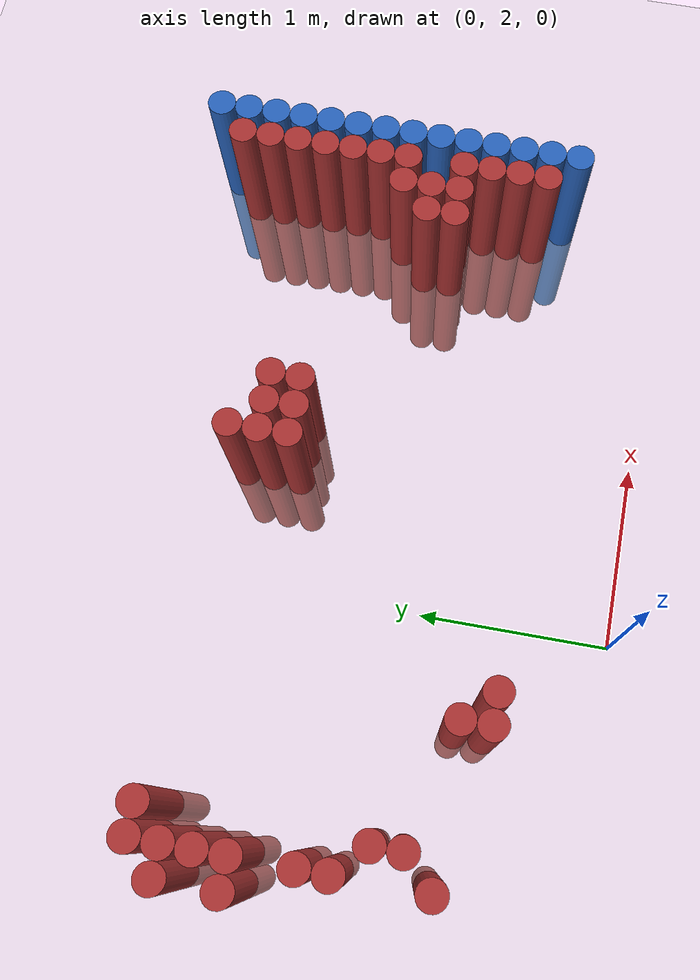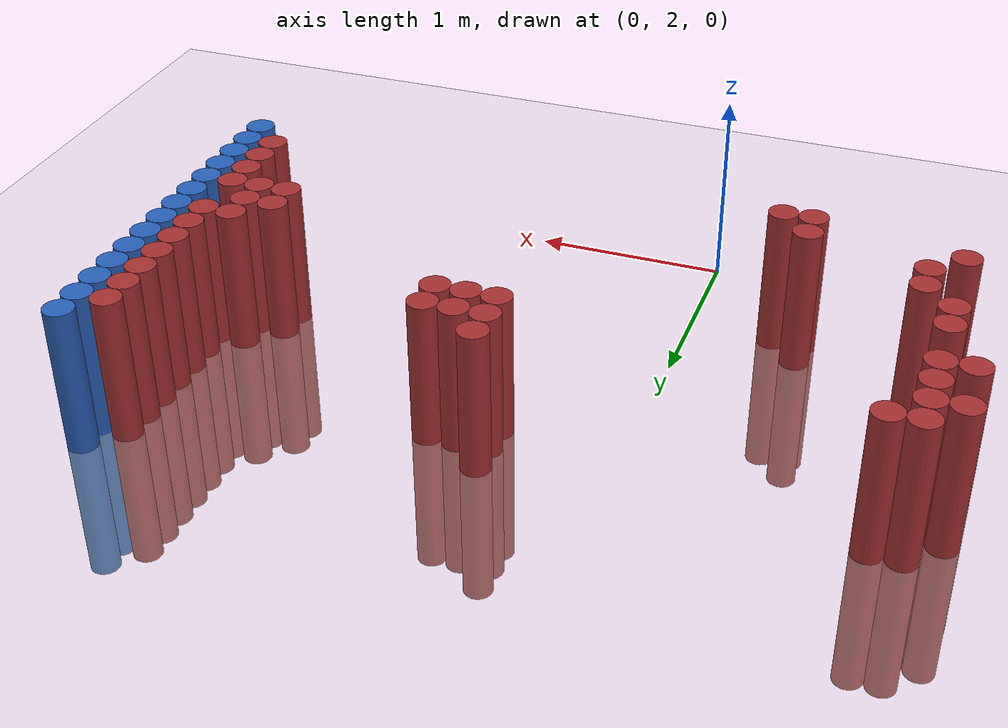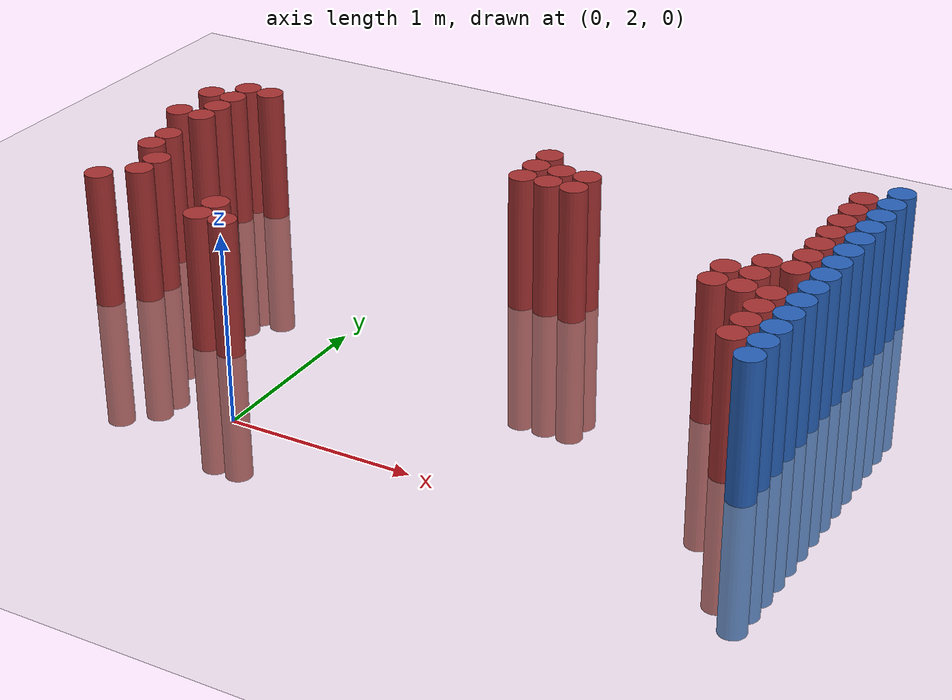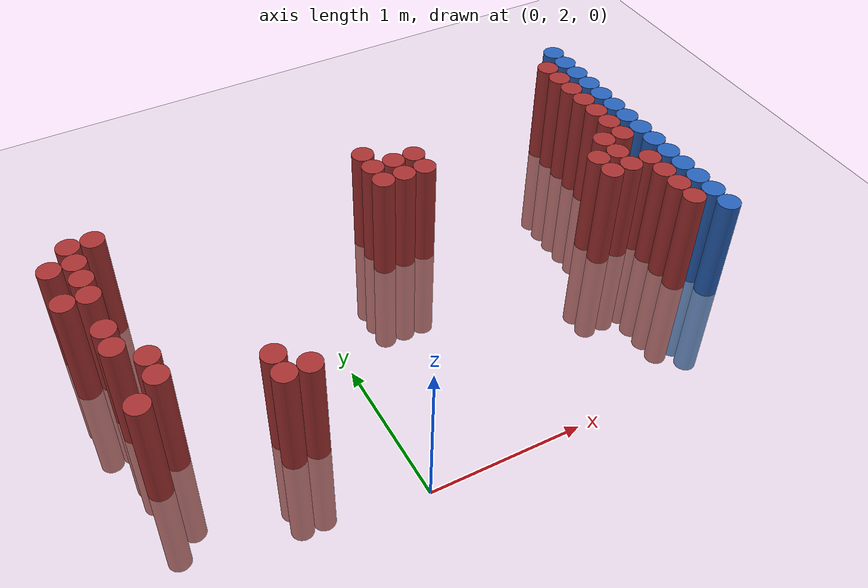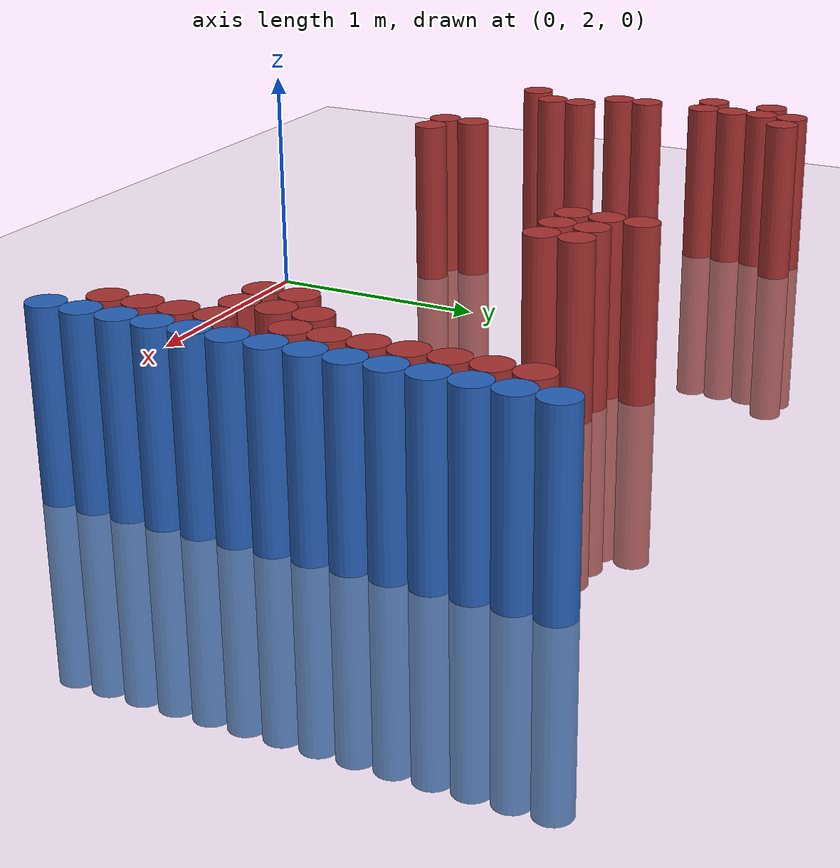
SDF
<sdf version="1.6">
 <world name="default">
  <model name="ground_plane">
   <static>1</static>
   <link name="link">
    <collision name="collision">
     <geometry><plane><normal>0 0 1</normal><size>100 100</size></plane></geometry>
     <surface><friction><ode><mu>100</mu><mu2>50</mu2></ode></friction></surface>
    </collision>
    <visual name="visual">
     <cast_shadows>0</cast_shadows>
     <geometry><plane><normal>0 0 1</normal><size>100 100</size></plane></geometry>
     <material>
      <script><uri>file://media/materials/scripts/gazebo.material</uri><name>Gazebo/Grey</name></script>
     </material>
    </visual>
   </link>
  </model>
  <model name="unit_cylinder_150">
   <static>1</static>
   <pose>-1.475000 3.625000 0.000000 0.000000 0.000000 0.000000</pose>
   <link name="link">
    <inertial>
     <mass>1</mass>
     <inertia><ixx>0.145833</ixx><ixy>0</ixy><ixz>0</ixz><iyy>0.145833</iyy><iyz>0</iyz><izz>0.125</izz></inertia>
    </inertial>
    <collision name="collision">
     <geometry><cylinder><radius>0.075000</radius><length>1.5</length></cylinder></geometry>
    </collision>
    <visual name="visual">
     <geometry><cylinder><radius>0.075000</radius><length>1.5</length></cylinder></geometry>
     <material>
      <ambient>0.648000 0.192000 0.192000 1</ambient>
      <diffuse>0.648000 0.192000 0.192000 1</diffuse>
     </material>
     <material>
      <script><name>Gazebo/Grey</name><uri>file://media/materials/scripts/gazebo.material</uri></script>
     </material>
    </visual>
   </link>
  </model>
  <model name="unit_cylinder_151">
   <static>1</static>
   <pose>-1.475000 3.925000 0.000000 0.000000 0.000000 0.000000</pose>
   <link name="link">
    <inertial>
     <mass>1</mass>
     <inertia><ixx>0.145833</ixx><ixy>0</ixy><ixz>0</ixz><iyy>0.145833</iyy><iyz>0</iyz><izz>0.125</izz></inertia>
    </inertial>
    <collision name="collision">
     <geometry><cylinder><radius>0.075000</radius><length>1.5</length></cylinder></geometry>
    </collision>
    <visual name="visual">
     <geometry><cylinder><radius>0.075000</radius><length>1.5</length></cylinder></geometry>
     <material>
      <ambient>0.648000 0.192000 0.192000 1</ambient>
      <diffuse>0.648000 0.192000 0.192000 1</diffuse>
     </material>
     <material>
      <script><name>Gazebo/Grey</name><uri>file://media/materials/scripts/gazebo.material</uri></script>
     </material>
    </visual>
   </link>
  </model>
  <model name="unit_cylinder_153">
   <static>1</static>
   <pose>-1.325000 2.725000 0.000000 0.000000 0.000000 0.000000</pose>
   <link name="link">
    <inertial>
     <mass>1</mass>
     <inertia><ixx>0.145833</ixx><ixy>0</ixy><ixz>0</ixz><iyy>0.145833</iyy><iyz>0</iyz><izz>0.125</izz></inertia>
    </inertial>
    <collision name="collision">
     <geometry><cylinder><radius>0.075000</radius><length>1.5</length></cylinder></geometry>
    </collision>
    <visual name="visual">
     <geometry><cylinder><radius>0.075000</radius><length>1.5</length></cylinder></geometry>
     <material>
      <ambient>0.648000 0.192000 0.192000 1</ambient>
      <diffuse>0.648000 0.192000 0.192000 1</diffuse>
     </material>
     <material>
      <script><name>Gazebo/Grey</name><uri>file://media/materials/scripts/gazebo.material</uri></script>
     </material>
    </visual>
   </link>
  </model>
  <model name="unit_cylinder_154">
   <static>1</static>
   <pose>-1.325000 3.175000 0.000000 0.000000 0.000000 0.000000</pose>
   <link name="link">
    <inertial>
     <mass>1</mass>
     <inertia><ixx>0.145833</ixx><ixy>0</ixy><ixz>0</ixz><iyy>0.145833</iyy><iyz>0</iyz><izz>0.125</izz></inertia>
    </inertial>
    <collision name="collision">
     <geometry><cylinder><radius>0.075000</radius><length>1.5</length></cylinder></geometry>
    </collision>
    <visual name="visual">
     <geometry><cylinder><radius>0.075000</radius><length>1.5</length></cylinder></geometry>
     <material>
      <ambient>0.648000 0.192000 0.192000 1</ambient>
      <diffuse>0.648000 0.192000 0.192000 1</diffuse>
     </material>
     <material>
      <script><name>Gazebo/Grey</name><uri>file://media/materials/scripts/gazebo.material</uri></script>
     </material>
    </visual>
   </link>
  </model>
  <model name="unit_cylinder_155">
   <static>1</static>
   <pose>-1.325000 3.325000 0.000000 0.000000 0.000000 0.000000</pose>
   <link name="link">
    <inertial>
     <mass>1</mass>
     <inertia><ixx>0.145833</ixx><ixy>0</ixy><ixz>0</ixz><iyy>0.145833</iyy><iyz>0</iyz><izz>0.125</izz></inertia>
    </inertial>
    <collision name="collision">
     <geometry><cylinder><radius>0.075000</radius><length>1.5</length></cylinder></geometry>
    </collision>
    <visual name="visual">
     <geometry><cylinder><radius>0.075000</radius><length>1.5</length></cylinder></geometry>
     <material>
      <ambient>0.648000 0.192000 0.192000 1</ambient>
      <diffuse>0.648000 0.192000 0.192000 1</diffuse>
     </material>
     <material>
      <script><name>Gazebo/Grey</name><uri>file://media/materials/scripts/gazebo.material</uri></script>
     </material>
    </visual>
   </link>
  </model>
  <model name="unit_cylinder_156">
   <static>1</static>
   <pose>-1.325000 3.625000 0.000000 0.000000 0.000000 0.000000</pose>
   <link name="link">
    <inertial>
     <mass>1</mass>
     <inertia><ixx>0.145833</ixx><ixy>0</ixy><ixz>0</ixz><iyy>0.145833</iyy><iyz>0</iyz><izz>0.125</izz></inertia>
    </inertial>
    <collision name="collision">
     <geometry><cylinder><radius>0.075000</radius><length>1.5</length></cylinder></geometry>
    </collision>
    <visual name="visual">
     <geometry><cylinder><radius>0.075000</radius><length>1.5</length></cylinder></geometry>
     <material>
      <ambient>0.648000 0.192000 0.192000 1</ambient>
      <diffuse>0.648000 0.192000 0.192000 1</diffuse>
     </material>
     <material>
      <script><name>Gazebo/Grey</name><uri>file://media/materials/scripts/gazebo.material</uri></script>
     </material>
    </visual>
   </link>
  </model>
  <model name="unit_cylinder_157">
   <static>1</static>
   <pose>-1.325000 3.775000 0.000000 0.000000 0.000000 0.000000</pose>
   <link name="link">
    <inertial>
     <mass>1</mass>
     <inertia><ixx>0.145833</ixx><ixy>0</ixy><ixz>0</ixz><iyy>0.145833</iyy><iyz>0</iyz><izz>0.125</izz></inertia>
    </inertial>
    <collision name="collision">
     <geometry><cylinder><radius>0.075000</radius><length>1.5</length></cylinder></geometry>
    </collision>
    <visual name="visual">
     <geometry><cylinder><radius>0.075000</radius><length>1.5</length></cylinder></geometry>
     <material>
      <ambient>0.648000 0.192000 0.192000 1</ambient>
      <diffuse>0.648000 0.192000 0.192000 1</diffuse>
     </material>
     <material>
      <script><name>Gazebo/Grey</name><uri>file://media/materials/scripts/gazebo.material</uri></script>
     </material>
    </visual>
   </link>
  </model>
  <model name="unit_cylinder_158">
   <static>1</static>
   <pose>-1.325000 3.925000 0.000000 0.000000 0.000000 0.000000</pose>
   <link name="link">
    <inertial>
     <mass>1</mass>
     <inertia><ixx>0.145833</ixx><ixy>0</ixy><ixz>0</ixz><iyy>0.145833</iyy><iyz>0</iyz><izz>0.125</izz></inertia>
    </inertial>
    <collision name="collision">
     <geometry><cylinder><radius>0.075000</radius><length>1.5</length></cylinder></geometry>
    </collision>
    <visual name="visual">
     <geometry><cylinder><radius>0.075000</radius><length>1.5</length></cylinder></geometry>
     <material>
      <ambient>0.648000 0.192000 0.192000 1</ambient>
      <diffuse>0.648000 0.192000 0.192000 1</diffuse>
     </material>
     <material>
      <script><name>Gazebo/Grey</name><uri>file://media/materials/scripts/gazebo.material</uri></script>
     </material>
    </visual>
   </link>
  </model>
  <model name="unit_cylinder_159">
   <static>1</static>
   <pose>-1.325000 4.075000 0.000000 0.000000 0.000000 0.000000</pose>
   <link name="link">
    <inertial>
     <mass>1</mass>
     <inertia><ixx>0.145833</ixx><ixy>0</ixy><ixz>0</ixz><iyy>0.145833</iyy><iyz>0</iyz><izz>0.125</izz></inertia>
    </inertial>
    <collision name="collision">
     <geometry><cylinder><radius>0.075000</radius><length>1.5</length></cylinder></geometry>
    </collision>
    <visual name="visual">
     <geometry><cylinder><radius>0.075000</radius><length>1.5</length></cylinder></geometry>
     <material>
      <ambient>0.648000 0.192000 0.192000 1</ambient>
      <diffuse>0.648000 0.192000 0.192000 1</diffuse>
     </material>
     <material>
      <script><name>Gazebo/Grey</name><uri>file://media/materials/scripts/gazebo.material</uri></script>
     </material>
    </visual>
   </link>
  </model>
  <model name="unit_cylinder_161">
   <static>1</static>
   <pose>-1.175000 2.875000 0.000000 0.000000 0.000000 0.000000</pose>
   <link name="link">
    <inertial>
     <mass>1</mass>
     <inertia><ixx>0.145833</ixx><ixy>0</ixy><ixz>0</ixz><iyy>0.145833</iyy><iyz>0</iyz><izz>0.125</izz></inertia>
    </inertial>
    <collision name="collision">
     <geometry><cylinder><radius>0.075000</radius><length>1.5</length></cylinder></geometry>
    </collision>
    <visual name="visual">
     <geometry><cylinder><radius>0.075000</radius><length>1.5</length></cylinder></geometry>
     <material>
      <ambient>0.648000 0.192000 0.192000 1</ambient>
      <diffuse>0.648000 0.192000 0.192000 1</diffuse>
     </material>
     <material>
      <script><name>Gazebo/Grey</name><uri>file://media/materials/scripts/gazebo.material</uri></script>
     </material>
    </visual>
   </link>
  </model>
  <model name="unit_cylinder_162">
   <static>1</static>
   <pose>-1.175000 3.025000 0.000000 0.000000 0.000000 0.000000</pose>
   <link name="link">
    <inertial>
     <mass>1</mass>
     <inertia><ixx>0.145833</ixx><ixy>0</ixy><ixz>0</ixz><iyy>0.145833</iyy><iyz>0</iyz><izz>0.125</izz></inertia>
    </inertial>
    <collision name="collision">
     <geometry><cylinder><radius>0.075000</radius><length>1.5</length></cylinder></geometry>
    </collision>
    <visual name="visual">
     <geometry><cylinder><radius>0.075000</radius><length>1.5</length></cylinder></geometry>
     <material>
      <ambient>0.648000 0.192000 0.192000 1</ambient>
      <diffuse>0.648000 0.192000 0.192000 1</diffuse>
     </material>
     <material>
      <script><name>Gazebo/Grey</name><uri>file://media/materials/scripts/gazebo.material</uri></script>
     </material>
    </visual>
   </link>
  </model>
  <model name="unit_cylinder_163">
   <static>1</static>
   <pose>-1.175000 4.075000 0.000000 0.000000 0.000000 0.000000</pose>
   <link name="link">
    <inertial>
     <mass>1</mass>
     <inertia><ixx>0.145833</ixx><ixy>0</ixy><ixz>0</ixz><iyy>0.145833</iyy><iyz>0</iyz><izz>0.125</izz></inertia>
    </inertial>
    <collision name="collision">
     <geometry><cylinder><radius>0.075000</radius><length>1.5</length></cylinder></geometry>
    </collision>
    <visual name="visual">
     <geometry><cylinder><radius>0.075000</radius><length>1.5</length></cylinder></geometry>
     <material>
      <ambient>0.648000 0.192000 0.192000 1</ambient>
      <diffuse>0.648000 0.192000 0.192000 1</diffuse>
     </material>
     <material>
      <script><name>Gazebo/Grey</name><uri>file://media/materials/scripts/gazebo.material</uri></script>
     </material>
    </visual>
   </link>
  </model>
  <model name="unit_cylinder_171">
   <static>1</static>
   <pose>-0.575000 2.575000 0.000000 0.000000 0.000000 0.000000</pose>
   <link name="link">
    <inertial>
     <mass>1</mass>
     <inertia><ixx>0.145833</ixx><ixy>0</ixy><ixz>0</ixz><iyy>0.145833</iyy><iyz>0</iyz><izz>0.125</izz></inertia>
    </inertial>
    <collision name="collision">
     <geometry><cylinder><radius>0.075000</radius><length>1.5</length></cylinder></geometry>
    </collision>
    <visual name="visual">
     <geometry><cylinder><radius>0.075000</radius><length>1.5</length></cylinder></geometry>
     <material>
      <ambient>0.648000 0.192000 0.192000 1</ambient>
      <diffuse>0.648000 0.192000 0.192000 1</diffuse>
     </material>
     <material>
      <script><name>Gazebo/Grey</name><uri>file://media/materials/scripts/gazebo.material</uri></script>
     </material>
    </visual>
   </link>
  </model>
  <model name="unit_cylinder_172">
   <static>1</static>
   <pose>-0.575000 2.725000 0.000000 0.000000 0.000000 0.000000</pose>
   <link name="link">
    <inertial>
     <mass>1</mass>
     <inertia><ixx>0.145833</ixx><ixy>0</ixy><ixz>0</ixz><iyy>0.145833</iyy><iyz>0</iyz><izz>0.125</izz></inertia>
    </inertial>
    <collision name="collision">
     <geometry><cylinder><radius>0.075000</radius><length>1.5</length></cylinder></geometry>
    </collision>
    <visual name="visual">
     <geometry><cylinder><radius>0.075000</radius><length>1.5</length></cylinder></geometry>
     <material>
      <ambient>0.648000 0.192000 0.192000 1</ambient>
      <diffuse>0.648000 0.192000 0.192000 1</diffuse>
     </material>
     <material>
      <script><name>Gazebo/Grey</name><uri>file://media/materials/scripts/gazebo.material</uri></script>
     </material>
    </visual>
   </link>
  </model>
  <model name="unit_cylinder_179">
   <static>1</static>
   <pose>-0.425000 2.575000 0.000000 0.000000 0.000000 0.000000</pose>
   <link name="link">
    <inertial>
     <mass>1</mass>
     <inertia><ixx>0.145833</ixx><ixy>0</ixy><ixz>0</ixz><iyy>0.145833</iyy><iyz>0</iyz><izz>0.125</izz></inertia>
    </inertial>
    <collision name="collision">
     <geometry><cylinder><radius>0.075000</radius><length>1.5</length></cylinder></geometry>
    </collision>
    <visual name="visual">
     <geometry><cylinder><radius>0.075000</radius><length>1.5</length></cylinder></geometry>
     <material>
      <ambient>0.648000 0.192000 0.192000 1</ambient>
      <diffuse>0.648000 0.192000 0.192000 1</diffuse>
     </material>
     <material>
      <script><name>Gazebo/Grey</name><uri>file://media/materials/scripts/gazebo.material</uri></script>
     </material>
    </visual>
   </link>
  </model>
  <model name="unit_cylinder_195">
   <static>1</static>
   <pose>0.625000 3.775000 0.000000 0.000000 0.000000 0.000000</pose>
   <link name="link">
    <inertial>
     <mass>1</mass>
     <inertia><ixx>0.145833</ixx><ixy>0</ixy><ixz>0</ixz><iyy>0.145833</iyy><iyz>0</iyz><izz>0.125</izz></inertia>
    </inertial>
    <collision name="collision">
     <geometry><cylinder><radius>0.075000</radius><length>1.5</length></cylinder></geometry>
    </collision>
    <visual name="visual">
     <geometry><cylinder><radius>0.075000</radius><length>1.5</length></cylinder></geometry>
     <material>
      <ambient>0.648000 0.192000 0.192000 1</ambient>
      <diffuse>0.648000 0.192000 0.192000 1</diffuse>
     </material>
     <material>
      <script><name>Gazebo/Grey</name><uri>file://media/materials/scripts/gazebo.material</uri></script>
     </material>
    </visual>
   </link>
  </model>
  <model name="unit_cylinder_196">
   <static>1</static>
   <pose>0.625000 3.925000 0.000000 0.000000 0.000000 0.000000</pose>
   <link name="link">
    <inertial>
     <mass>1</mass>
     <inertia><ixx>0.145833</ixx><ixy>0</ixy><ixz>0</ixz><iyy>0.145833</iyy><iyz>0</iyz><izz>0.125</izz></inertia>
    </inertial>
    <collision name="collision">
     <geometry><cylinder><radius>0.075000</radius><length>1.5</length></cylinder></geometry>
    </collision>
    <visual name="visual">
     <geometry><cylinder><radius>0.075000</radius><length>1.5</length></cylinder></geometry>
     <material>
      <ambient>0.648000 0.192000 0.192000 1</ambient>
      <diffuse>0.648000 0.192000 0.192000 1</diffuse>
     </material>
     <material>
      <script><name>Gazebo/Grey</name><uri>file://media/materials/scripts/gazebo.material</uri></script>
     </material>
    </visual>
   </link>
  </model>
  <model name="unit_cylinder_197">
   <static>1</static>
   <pose>0.625000 4.075000 0.000000 0.000000 0.000000 0.000000</pose>
   <link name="link">
    <inertial>
     <mass>1</mass>
     <inertia><ixx>0.145833</ixx><ixy>0</ixy><ixz>0</ixz><iyy>0.145833</iyy><iyz>0</iyz><izz>0.125</izz></inertia>
    </inertial>
    <collision name="collision">
     <geometry><cylinder><radius>0.075000</radius><length>1.5</length></cylinder></geometry>
    </collision>
    <visual name="visual">
     <geometry><cylinder><radius>0.075000</radius><length>1.5</length></cylinder></geometry>
     <material>
      <ambient>0.648000 0.192000 0.192000 1</ambient>
      <diffuse>0.648000 0.192000 0.192000 1</diffuse>
     </material>
     <material>
      <script><name>Gazebo/Grey</name><uri>file://media/materials/scripts/gazebo.material</uri></script>
     </material>
    </visual>
   </link>
  </model>
  <model name="unit_cylinder_199">
   <static>1</static>
   <pose>0.775000 3.775000 0.000000 0.000000 0.000000 0.000000</pose>
   <link name="link">
    <inertial>
     <mass>1</mass>
     <inertia><ixx>0.145833</ixx><ixy>0</ixy><ixz>0</ixz><iyy>0.145833</iyy><iyz>0</iyz><izz>0.125</izz></inertia>
    </inertial>
    <collision name="collision">
     <geometry><cylinder><radius>0.075000</radius><length>1.5</length></cylinder></geometry>
    </collision>
    <visual name="visual">
     <geometry><cylinder><radius>0.075000</radius><length>1.5</length></cylinder></geometry>
     <material>
      <ambient>0.648000 0.192000 0.192000 1</ambient>
      <diffuse>0.648000 0.192000 0.192000 1</diffuse>
     </material>
     <material>
      <script><name>Gazebo/Grey</name><uri>file://media/materials/scripts/gazebo.material</uri></script>
     </material>
    </visual>
   </link>
  </model>
  <model name="unit_cylinder_200">
   <static>1</static>
   <pose>0.775000 3.925000 0.000000 0.000000 0.000000 0.000000</pose>
   <link name="link">
    <inertial>
     <mass>1</mass>
     <inertia><ixx>0.145833</ixx><ixy>0</ixy><ixz>0</ixz><iyy>0.145833</iyy><iyz>0</iyz><izz>0.125</izz></inertia>
    </inertial>
    <collision name="collision">
     <geometry><cylinder><radius>0.075000</radius><length>1.5</length></cylinder></geometry>
    </collision>
    <visual name="visual">
     <geometry><cylinder><radius>0.075000</radius><length>1.5</length></cylinder></geometry>
     <material>
      <ambient>0.648000 0.192000 0.192000 1</ambient>
      <diffuse>0.648000 0.192000 0.192000 1</diffuse>
     </material>
     <material>
      <script><name>Gazebo/Grey</name><uri>file://media/materials/scripts/gazebo.material</uri></script>
     </material>
    </visual>
   </link>
  </model>
  <model name="unit_cylinder_201">
   <static>1</static>
   <pose>0.925000 3.775000 0.000000 0.000000 0.000000 0.000000</pose>
   <link name="link">
    <inertial>
     <mass>1</mass>
     <inertia><ixx>0.145833</ixx><ixy>0</ixy><ixz>0</ixz><iyy>0.145833</iyy><iyz>0</iyz><izz>0.125</izz></inertia>
    </inertial>
    <collision name="collision">
     <geometry><cylinder><radius>0.075000</radius><length>1.5</length></cylinder></geometry>
    </collision>
    <visual name="visual">
     <geometry><cylinder><radius>0.075000</radius><length>1.5</length></cylinder></geometry>
     <material>
      <ambient>0.648000 0.192000 0.192000 1</ambient>
      <diffuse>0.648000 0.192000 0.192000 1</diffuse>
     </material>
     <material>
      <script><name>Gazebo/Grey</name><uri>file://media/materials/scripts/gazebo.material</uri></script>
     </material>
    </visual>
   </link>
  </model>
  <model name="unit_cylinder_202">
   <static>1</static>
   <pose>0.925000 3.925000 0.000000 0.000000 0.000000 0.000000</pose>
   <link name="link">
    <inertial>
     <mass>1</mass>
     <inertia><ixx>0.145833</ixx><ixy>0</ixy><ixz>0</ixz><iyy>0.145833</iyy><iyz>0</iyz><izz>0.125</izz></inertia>
    </inertial>
    <collision name="collision">
     <geometry><cylinder><radius>0.075000</radius><length>1.5</length></cylinder></geometry>
    </collision>
    <visual name="visual">
     <geometry><cylinder><radius>0.075000</radius><length>1.5</length></cylinder></geometry>
     <material>
      <ambient>0.648000 0.192000 0.192000 1</ambient>
      <diffuse>0.648000 0.192000 0.192000 1</diffuse>
     </material>
     <material>
      <script><name>Gazebo/Grey</name><uri>file://media/materials/scripts/gazebo.material</uri></script>
     </material>
    </visual>
   </link>
  </model>
  <model name="unit_cylinder_212">
   <static>1</static>
   <pose>1.975000 3.175000 0.000000 0.000000 0.000000 0.000000</pose>
   <link name="link">
    <inertial>
     <mass>1</mass>
     <inertia><ixx>0.145833</ixx><ixy>0</ixy><ixz>0</ixz><iyy>0.145833</iyy><iyz>0</iyz><izz>0.125</izz></inertia>
    </inertial>
    <collision name="collision">
     <geometry><cylinder><radius>0.075000</radius><length>1.5</length></cylinder></geometry>
    </collision>
    <visual name="visual">
     <geometry><cylinder><radius>0.075000</radius><length>1.5</length></cylinder></geometry>
     <material>
      <ambient>0.648000 0.192000 0.192000 1</ambient>
      <diffuse>0.648000 0.192000 0.192000 1</diffuse>
     </material>
     <material>
      <script><name>Gazebo/Grey</name><uri>file://media/materials/scripts/gazebo.material</uri></script>
     </material>
    </visual>
   </link>
  </model>
  <model name="unit_cylinder_213">
   <static>1</static>
   <pose>1.975000 3.325000 0.000000 0.000000 0.000000 0.000000</pose>
   <link name="link">
    <inertial>
     <mass>1</mass>
     <inertia><ixx>0.145833</ixx><ixy>0</ixy><ixz>0</ixz><iyy>0.145833</iyy><iyz>0</iyz><izz>0.125</izz></inertia>
    </inertial>
    <collision name="collision">
     <geometry><cylinder><radius>0.075000</radius><length>1.5</length></cylinder></geometry>
    </collision>
    <visual name="visual">
     <geometry><cylinder><radius>0.075000</radius><length>1.5</length></cylinder></geometry>
     <material>
      <ambient>0.648000 0.192000 0.192000 1</ambient>
      <diffuse>0.648000 0.192000 0.192000 1</diffuse>
     </material>
     <material>
      <script><name>Gazebo/Grey</name><uri>file://media/materials/scripts/gazebo.material</uri></script>
     </material>
    </visual>
   </link>
  </model>
  <model name="unit_cylinder_214">
   <static>1</static>
   <pose>2.125000 3.175000 0.000000 0.000000 0.000000 0.000000</pose>
   <link name="link">
    <inertial>
     <mass>1</mass>
     <inertia><ixx>0.145833</ixx><ixy>0</ixy><ixz>0</ixz><iyy>0.145833</iyy><iyz>0</iyz><izz>0.125</izz></inertia>
    </inertial>
    <collision name="collision">
     <geometry><cylinder><radius>0.075000</radius><length>1.5</length></cylinder></geometry>
    </collision>
    <visual name="visual">
     <geometry><cylinder><radius>0.075000</radius><length>1.5</length></cylinder></geometry>
     <material>
      <ambient>0.648000 0.192000 0.192000 1</ambient>
      <diffuse>0.648000 0.192000 0.192000 1</diffuse>
     </material>
     <material>
      <script><name>Gazebo/Grey</name><uri>file://media/materials/scripts/gazebo.material</uri></script>
     </material>
    </visual>
   </link>
  </model>
  <model name="unit_cylinder_215">
   <static>1</static>
   <pose>2.125000 3.325000 0.000000 0.000000 0.000000 0.000000</pose>
   <link name="link">
    <inertial>
     <mass>1</mass>
     <inertia><ixx>0.145833</ixx><ixy>0</ixy><ixz>0</ixz><iyy>0.145833</iyy><iyz>0</iyz><izz>0.125</izz></inertia>
    </inertial>
    <collision name="collision">
     <geometry><cylinder><radius>0.075000</radius><length>1.5</length></cylinder></geometry>
    </collision>
    <visual name="visual">
     <geometry><cylinder><radius>0.075000</radius><length>1.5</length></cylinder></geometry>
     <material>
      <ambient>0.648000 0.192000 0.192000 1</ambient>
      <diffuse>0.648000 0.192000 0.192000 1</diffuse>
     </material>
     <material>
      <script><name>Gazebo/Grey</name><uri>file://media/materials/scripts/gazebo.material</uri></script>
     </material>
    </visual>
   </link>
  </model>
  <model name="unit_cylinder_216">
   <static>1</static>
   <pose>2.125000 3.475000 0.000000 0.000000 0.000000 0.000000</pose>
   <link name="link">
    <inertial>
     <mass>1</mass>
     <inertia><ixx>0.145833</ixx><ixy>0</ixy><ixz>0</ixz><iyy>0.145833</iyy><iyz>0</iyz><izz>0.125</izz></inertia>
    </inertial>
    <collision name="collision">
     <geometry><cylinder><radius>0.075000</radius><length>1.5</length></cylinder></geometry>
    </collision>
    <visual name="visual">
     <geometry><cylinder><radius>0.075000</radius><length>1.5</length></cylinder></geometry>
     <material>
      <ambient>0.648000 0.192000 0.192000 1</ambient>
      <diffuse>0.648000 0.192000 0.192000 1</diffuse>
     </material>
     <material>
      <script><name>Gazebo/Grey</name><uri>file://media/materials/scripts/gazebo.material</uri></script>
     </material>
    </visual>
   </link>
  </model>
  <model name="unit_cylinder_218">
   <static>1</static>
   <pose>2.275000 2.725000 0.000000 0.000000 0.000000 0.000000</pose>
   <link name="link">
    <inertial>
     <mass>1</mass>
     <inertia><ixx>0.145833</ixx><ixy>0</ixy><ixz>0</ixz><iyy>0.145833</iyy><iyz>0</iyz><izz>0.125</izz></inertia>
    </inertial>
    <collision name="collision">
     <geometry><cylinder><radius>0.075000</radius><length>1.5</length></cylinder></geometry>
    </collision>
    <visual name="visual">
     <geometry><cylinder><radius>0.075000</radius><length>1.5</length></cylinder></geometry>
     <material>
      <ambient>0.648000 0.192000 0.192000 1</ambient>
      <diffuse>0.648000 0.192000 0.192000 1</diffuse>
     </material>
     <material>
      <script><name>Gazebo/Grey</name><uri>file://media/materials/scripts/gazebo.material</uri></script>
     </material>
    </visual>
   </link>
  </model>
  <model name="unit_cylinder_219">
   <static>1</static>
   <pose>2.275000 2.875000 0.000000 0.000000 0.000000 0.000000</pose>
   <link name="link">
    <inertial>
     <mass>1</mass>
     <inertia><ixx>0.145833</ixx><ixy>0</ixy><ixz>0</ixz><iyy>0.145833</iyy><iyz>0</iyz><izz>0.125</izz></inertia>
    </inertial>
    <collision name="collision">
     <geometry><cylinder><radius>0.075000</radius><length>1.5</length></cylinder></geometry>
    </collision>
    <visual name="visual">
     <geometry><cylinder><radius>0.075000</radius><length>1.5</length></cylinder></geometry>
     <material>
      <ambient>0.648000 0.192000 0.192000 1</ambient>
      <diffuse>0.648000 0.192000 0.192000 1</diffuse>
     </material>
     <material>
      <script><name>Gazebo/Grey</name><uri>file://media/materials/scripts/gazebo.material</uri></script>
     </material>
    </visual>
   </link>
  </model>
  <model name="unit_cylinder_220">
   <static>1</static>
   <pose>2.275000 3.025000 0.000000 0.000000 0.000000 0.000000</pose>
   <link name="link">
    <inertial>
     <mass>1</mass>
     <inertia><ixx>0.145833</ixx><ixy>0</ixy><ixz>0</ixz><iyy>0.145833</iyy><iyz>0</iyz><izz>0.125</izz></inertia>
    </inertial>
    <collision name="collision">
     <geometry><cylinder><radius>0.075000</radius><length>1.5</length></cylinder></geometry>
    </collision>
    <visual name="visual">
     <geometry><cylinder><radius>0.075000</radius><length>1.5</length></cylinder></geometry>
     <material>
      <ambient>0.648000 0.192000 0.192000 1</ambient>
      <diffuse>0.648000 0.192000 0.192000 1</diffuse>
     </material>
     <material>
      <script><name>Gazebo/Grey</name><uri>file://media/materials/scripts/gazebo.material</uri></script>
     </material>
    </visual>
   </link>
  </model>
  <model name="unit_cylinder_221">
   <static>1</static>
   <pose>2.275000 3.175000 0.000000 0.000000 0.000000 0.000000</pose>
   <link name="link">
    <inertial>
     <mass>1</mass>
     <inertia><ixx>0.145833</ixx><ixy>0</ixy><ixz>0</ixz><iyy>0.145833</iyy><iyz>0</iyz><izz>0.125</izz></inertia>
    </inertial>
    <collision name="collision">
     <geometry><cylinder><radius>0.075000</radius><length>1.5</length></cylinder></geometry>
    </collision>
    <visual name="visual">
     <geometry><cylinder><radius>0.075000</radius><length>1.5</length></cylinder></geometry>
     <material>
      <ambient>0.648000 0.192000 0.192000 1</ambient>
      <diffuse>0.648000 0.192000 0.192000 1</diffuse>
     </material>
     <material>
      <script><name>Gazebo/Grey</name><uri>file://media/materials/scripts/gazebo.material</uri></script>
     </material>
    </visual>
   </link>
  </model>
  <model name="unit_cylinder_222">
   <static>1</static>
   <pose>2.275000 3.475000 0.000000 0.000000 0.000000 0.000000</pose>
   <link name="link">
    <inertial>
     <mass>1</mass>
     <inertia><ixx>0.145833</ixx><ixy>0</ixy><ixz>0</ixz><iyy>0.145833</iyy><iyz>0</iyz><izz>0.125</izz></inertia>
    </inertial>
    <collision name="collision">
     <geometry><cylinder><radius>0.075000</radius><length>1.5</length></cylinder></geometry>
    </collision>
    <visual name="visual">
     <geometry><cylinder><radius>0.075000</radius><length>1.5</length></cylinder></geometry>
     <material>
      <ambient>0.648000 0.192000 0.192000 1</ambient>
      <diffuse>0.648000 0.192000 0.192000 1</diffuse>
     </material>
     <material>
      <script><name>Gazebo/Grey</name><uri>file://media/materials/scripts/gazebo.material</uri></script>
     </material>
    </visual>
   </link>
  </model>
  <model name="unit_cylinder_223">
   <static>1</static>
   <pose>2.275000 3.625000 0.000000 0.000000 0.000000 0.000000</pose>
   <link name="link">
    <inertial>
     <mass>1</mass>
     <inertia><ixx>0.145833</ixx><ixy>0</ixy><ixz>0</ixz><iyy>0.145833</iyy><iyz>0</iyz><izz>0.125</izz></inertia>
    </inertial>
    <collision name="collision">
     <geometry><cylinder><radius>0.075000</radius><length>1.5</length></cylinder></geometry>
    </collision>
    <visual name="visual">
     <geometry><cylinder><radius>0.075000</radius><length>1.5</length></cylinder></geometry>
     <material>
      <ambient>0.648000 0.192000 0.192000 1</ambient>
      <diffuse>0.648000 0.192000 0.192000 1</diffuse>
     </material>
     <material>
      <script><name>Gazebo/Grey</name><uri>file://media/materials/scripts/gazebo.material</uri></script>
     </material>
    </visual>
   </link>
  </model>
  <model name="unit_cylinder_224">
   <static>1</static>
   <pose>2.275000 3.775000 0.000000 0.000000 0.000000 0.000000</pose>
   <link name="link">
    <inertial>
     <mass>1</mass>
     <inertia><ixx>0.145833</ixx><ixy>0</ixy><ixz>0</ixz><iyy>0.145833</iyy><iyz>0</iyz><izz>0.125</izz></inertia>
    </inertial>
    <collision name="collision">
     <geometry><cylinder><radius>0.075000</radius><length>1.5</length></cylinder></geometry>
    </collision>
    <visual name="visual">
     <geometry><cylinder><radius>0.075000</radius><length>1.5</length></cylinder></geometry>
     <material>
      <ambient>0.648000 0.192000 0.192000 1</ambient>
      <diffuse>0.648000 0.192000 0.192000 1</diffuse>
     </material>
     <material>
      <script><name>Gazebo/Grey</name><uri>file://media/materials/scripts/gazebo.material</uri></script>
     </material>
    </visual>
   </link>
  </model>
  <model name="unit_cylinder_225">
   <static>1</static>
   <pose>2.275000 3.925000 0.000000 0.000000 0.000000 0.000000</pose>
   <link name="link">
    <inertial>
     <mass>1</mass>
     <inertia><ixx>0.145833</ixx><ixy>0</ixy><ixz>0</ixz><iyy>0.145833</iyy><iyz>0</iyz><izz>0.125</izz></inertia>
    </inertial>
    <collision name="collision">
     <geometry><cylinder><radius>0.075000</radius><length>1.5</length></cylinder></geometry>
    </collision>
    <visual name="visual">
     <geometry><cylinder><radius>0.075000</radius><length>1.5</length></cylinder></geometry>
     <material>
      <ambient>0.648000 0.192000 0.192000 1</ambient>
      <diffuse>0.648000 0.192000 0.192000 1</diffuse>
     </material>
     <material>
      <script><name>Gazebo/Grey</name><uri>file://media/materials/scripts/gazebo.material</uri></script>
     </material>
    </visual>
   </link>
  </model>
  <model name="unit_cylinder_226">
   <static>1</static>
   <pose>2.275000 4.075000 0.000000 0.000000 0.000000 0.000000</pose>
   <link name="link">
    <inertial>
     <mass>1</mass>
     <inertia><ixx>0.145833</ixx><ixy>0</ixy><ixz>0</ixz><iyy>0.145833</iyy><iyz>0</iyz><izz>0.125</izz></inertia>
    </inertial>
    <collision name="collision">
     <geometry><cylinder><radius>0.075000</radius><length>1.5</length></cylinder></geometry>
    </collision>
    <visual name="visual">
     <geometry><cylinder><radius>0.075000</radius><length>1.5</length></cylinder></geometry>
     <material>
      <ambient>0.648000 0.192000 0.192000 1</ambient>
      <diffuse>0.648000 0.192000 0.192000 1</diffuse>
     </material>
     <material>
      <script><name>Gazebo/Grey</name><uri>file://media/materials/scripts/gazebo.material</uri></script>
     </material>
    </visual>
   </link>
  </model>
  <model name="unit_cylinder_227">
   <static>1</static>
   <pose>2.275000 4.225000 0.000000 0.000000 0.000000 0.000000</pose>
   <link name="link">
    <inertial>
     <mass>1</mass>
     <inertia><ixx>0.145833</ixx><ixy>0</ixy><ixz>0</ixz><iyy>0.145833</iyy><iyz>0</iyz><izz>0.125</izz></inertia>
    </inertial>
    <collision name="collision">
     <geometry><cylinder><radius>0.075000</radius><length>1.5</length></cylinder></geometry>
    </collision>
    <visual name="visual">
     <geometry><cylinder><radius>0.075000</radius><length>1.5</length></cylinder></geometry>
     <material>
      <ambient>0.648000 0.192000 0.192000 1</ambient>
      <diffuse>0.648000 0.192000 0.192000 1</diffuse>
     </material>
     <material>
      <script><name>Gazebo/Grey</name><uri>file://media/materials/scripts/gazebo.material</uri></script>
     </material>
    </visual>
   </link>
  </model>
  <model name="unit_cylinder_228">
   <static>1</static>
   <pose>2.275000 4.375000 0.000000 0.000000 0.000000 0.000000</pose>
   <link name="link">
    <inertial>
     <mass>1</mass>
     <inertia><ixx>0.145833</ixx><ixy>0</ixy><ixz>0</ixz><iyy>0.145833</iyy><iyz>0</iyz><izz>0.125</izz></inertia>
    </inertial>
    <collision name="collision">
     <geometry><cylinder><radius>0.075000</radius><length>1.5</length></cylinder></geometry>
    </collision>
    <visual name="visual">
     <geometry><cylinder><radius>0.075000</radius><length>1.5</length></cylinder></geometry>
     <material>
      <ambient>0.648000 0.192000 0.192000 1</ambient>
      <diffuse>0.648000 0.192000 0.192000 1</diffuse>
     </material>
     <material>
      <script><name>Gazebo/Grey</name><uri>file://media/materials/scripts/gazebo.material</uri></script>
     </material>
    </visual>
   </link>
  </model>
  <model name="unit_cylinder_245">
   <static>1</static>
   <pose>2.425000 2.575000 0.000000 0.000000 0.000000 0.000000</pose>
   <link name="link">
    <inertial>
     <mass>1</mass>
     <inertia><ixx>0.145833</ixx><ixy>0</ixy><ixz>0</ixz><iyy>0.145833</iyy><iyz>0</iyz><izz>0.125</izz></inertia>
    </inertial>
    <collision name="collision">
     <geometry><cylinder><radius>0.075000</radius><length>1.5</length></cylinder></geometry>
    </collision>
    <visual name="visual">
     <geometry><cylinder><radius>0.075000</radius><length>1.5</length></cylinder></geometry>
     <material>
      <ambient>0.152000 0.379000 0.720000 1</ambient>
      <diffuse>0.152000 0.379000 0.720000 1</diffuse>
     </material>
     <material>
      <script><name>Gazebo/Grey</name><uri>file://media/materials/scripts/gazebo.material</uri></script>
     </material>
    </visual>
   </link>
  </model>
  <model name="unit_cylinder_246">
   <static>1</static>
   <pose>2.425000 2.725000 0.000000 0.000000 0.000000 0.000000</pose>
   <link name="link">
    <inertial>
     <mass>1</mass>
     <inertia><ixx>0.145833</ixx><ixy>0</ixy><ixz>0</ixz><iyy>0.145833</iyy><iyz>0</iyz><izz>0.125</izz></inertia>
    </inertial>
    <collision name="collision">
     <geometry><cylinder><radius>0.075000</radius><length>1.5</length></cylinder></geometry>
    </collision>
    <visual name="visual">
     <geometry><cylinder><radius>0.075000</radius><length>1.5</length></cylinder></geometry>
     <material>
      <ambient>0.152000 0.379000 0.720000 1</ambient>
      <diffuse>0.152000 0.379000 0.720000 1</diffuse>
     </material>
     <material>
      <script><name>Gazebo/Grey</name><uri>file://media/materials/scripts/gazebo.material</uri></script>
     </material>
    </visual>
   </link>
  </model>
  <model name="unit_cylinder_247">
   <static>1</static>
   <pose>2.425000 2.875000 0.000000 0.000000 0.000000 0.000000</pose>
   <link name="link">
    <inertial>
     <mass>1</mass>
     <inertia><ixx>0.145833</ixx><ixy>0</ixy><ixz>0</ixz><iyy>0.145833</iyy><iyz>0</iyz><izz>0.125</izz></inertia>
    </inertial>
    <collision name="collision">
     <geometry><cylinder><radius>0.075000</radius><length>1.5</length></cylinder></geometry>
    </collision>
    <visual name="visual">
     <geometry><cylinder><radius>0.075000</radius><length>1.5</length></cylinder></geometry>
     <material>
      <ambient>0.152000 0.379000 0.720000 1</ambient>
      <diffuse>0.152000 0.379000 0.720000 1</diffuse>
     </material>
     <material>
      <script><name>Gazebo/Grey</name><uri>file://media/materials/scripts/gazebo.material</uri></script>
     </material>
    </visual>
   </link>
  </model>
  <model name="unit_cylinder_248">
   <static>1</static>
   <pose>2.425000 3.025000 0.000000 0.000000 0.000000 0.000000</pose>
   <link name="link">
    <inertial>
     <mass>1</mass>
     <inertia><ixx>0.145833</ixx><ixy>0</ixy><ixz>0</ixz><iyy>0.145833</iyy><iyz>0</iyz><izz>0.125</izz></inertia>
    </inertial>
    <collision name="collision">
     <geometry><cylinder><radius>0.075000</radius><length>1.5</length></cylinder></geometry>
    </collision>
    <visual name="visual">
     <geometry><cylinder><radius>0.075000</radius><length>1.5</length></cylinder></geometry>
     <material>
      <ambient>0.152000 0.379000 0.720000 1</ambient>
      <diffuse>0.152000 0.379000 0.720000 1</diffuse>
     </material>
     <material>
      <script><name>Gazebo/Grey</name><uri>file://media/materials/scripts/gazebo.material</uri></script>
     </material>
    </visual>
   </link>
  </model>
  <model name="unit_cylinder_249">
   <static>1</static>
   <pose>2.425000 3.175000 0.000000 0.000000 0.000000 0.000000</pose>
   <link name="link">
    <inertial>
     <mass>1</mass>
     <inertia><ixx>0.145833</ixx><ixy>0</ixy><ixz>0</ixz><iyy>0.145833</iyy><iyz>0</iyz><izz>0.125</izz></inertia>
    </inertial>
    <collision name="collision">
     <geometry><cylinder><radius>0.075000</radius><length>1.5</length></cylinder></geometry>
    </collision>
    <visual name="visual">
     <geometry><cylinder><radius>0.075000</radius><length>1.5</length></cylinder></geometry>
     <material>
      <ambient>0.152000 0.379000 0.720000 1</ambient>
      <diffuse>0.152000 0.379000 0.720000 1</diffuse>
     </material>
     <material>
      <script><name>Gazebo/Grey</name><uri>file://media/materials/scripts/gazebo.material</uri></script>
     </material>
    </visual>
   </link>
  </model>
  <model name="unit_cylinder_250">
   <static>1</static>
   <pose>2.425000 3.325000 0.000000 0.000000 0.000000 0.000000</pose>
   <link name="link">
    <inertial>
     <mass>1</mass>
     <inertia><ixx>0.145833</ixx><ixy>0</ixy><ixz>0</ixz><iyy>0.145833</iyy><iyz>0</iyz><izz>0.125</izz></inertia>
    </inertial>
    <collision name="collision">
     <geometry><cylinder><radius>0.075000</radius><length>1.5</length></cylinder></geometry>
    </collision>
    <visual name="visual">
     <geometry><cylinder><radius>0.075000</radius><length>1.5</length></cylinder></geometry>
     <material>
      <ambient>0.152000 0.379000 0.720000 1</ambient>
      <diffuse>0.152000 0.379000 0.720000 1</diffuse>
     </material>
     <material>
      <script><name>Gazebo/Grey</name><uri>file://media/materials/scripts/gazebo.material</uri></script>
     </material>
    </visual>
   </link>
  </model>
  <model name="unit_cylinder_251">
   <static>1</static>
   <pose>2.425000 3.475000 0.000000 0.000000 0.000000 0.000000</pose>
   <link name="link">
    <inertial>
     <mass>1</mass>
     <inertia><ixx>0.145833</ixx><ixy>0</ixy><ixz>0</ixz><iyy>0.145833</iyy><iyz>0</iyz><izz>0.125</izz></inertia>
    </inertial>
    <collision name="collision">
     <geometry><cylinder><radius>0.075000</radius><length>1.5</length></cylinder></geometry>
    </collision>
    <visual name="visual">
     <geometry><cylinder><radius>0.075000</radius><length>1.5</length></cylinder></geometry>
     <material>
      <ambient>0.152000 0.379000 0.720000 1</ambient>
      <diffuse>0.152000 0.379000 0.720000 1</diffuse>
     </material>
     <material>
      <script><name>Gazebo/Grey</name><uri>file://media/materials/scripts/gazebo.material</uri></script>
     </material>
    </visual>
   </link>
  </model>
  <model name="unit_cylinder_252">
   <static>1</static>
   <pose>2.425000 3.625000 0.000000 0.000000 0.000000 0.000000</pose>
   <link name="link">
    <inertial>
     <mass>1</mass>
     <inertia><ixx>0.145833</ixx><ixy>0</ixy><ixz>0</ixz><iyy>0.145833</iyy><iyz>0</iyz><izz>0.125</izz></inertia>
    </inertial>
    <collision name="collision">
     <geometry><cylinder><radius>0.075000</radius><length>1.5</length></cylinder></geometry>
    </collision>
    <visual name="visual">
     <geometry><cylinder><radius>0.075000</radius><length>1.5</length></cylinder></geometry>
     <material>
      <ambient>0.152000 0.379000 0.720000 1</ambient>
      <diffuse>0.152000 0.379000 0.720000 1</diffuse>
     </material>
     <material>
      <script><name>Gazebo/Grey</name><uri>file://media/materials/scripts/gazebo.material</uri></script>
     </material>
    </visual>
   </link>
  </model>
  <model name="unit_cylinder_253">
   <static>1</static>
   <pose>2.425000 3.775000 0.000000 0.000000 0.000000 0.000000</pose>
   <link name="link">
    <inertial>
     <mass>1</mass>
     <inertia><ixx>0.145833</ixx><ixy>0</ixy><ixz>0</ixz><iyy>0.145833</iyy><iyz>0</iyz><izz>0.125</izz></inertia>
    </inertial>
    <collision name="collision">
     <geometry><cylinder><radius>0.075000</radius><length>1.5</length></cylinder></geometry>
    </collision>
    <visual name="visual">
     <geometry><cylinder><radius>0.075000</radius><length>1.5</length></cylinder></geometry>
     <material>
      <ambient>0.152000 0.379000 0.720000 1</ambient>
      <diffuse>0.152000 0.379000 0.720000 1</diffuse>
     </material>
     <material>
      <script><name>Gazebo/Grey</name><uri>file://media/materials/scripts/gazebo.material</uri></script>
     </material>
    </visual>
   </link>
  </model>
  <model name="unit_cylinder_254">
   <static>1</static>
   <pose>2.425000 3.925000 0.000000 0.000000 0.000000 0.000000</pose>
   <link name="link">
    <inertial>
     <mass>1</mass>
     <inertia><ixx>0.145833</ixx><ixy>0</ixy><ixz>0</ixz><iyy>0.145833</iyy><iyz>0</iyz><izz>0.125</izz></inertia>
    </inertial>
    <collision name="collision">
     <geometry><cylinder><radius>0.075000</radius><length>1.5</length></cylinder></geometry>
    </collision>
    <visual name="visual">
     <geometry><cylinder><radius>0.075000</radius><length>1.5</length></cylinder></geometry>
     <material>
      <ambient>0.152000 0.379000 0.720000 1</ambient>
      <diffuse>0.152000 0.379000 0.720000 1</diffuse>
     </material>
     <material>
      <script><name>Gazebo/Grey</name><uri>file://media/materials/scripts/gazebo.material</uri></script>
     </material>
    </visual>
   </link>
  </model>
  <model name="unit_cylinder_255">
   <static>1</static>
   <pose>2.425000 4.075000 0.000000 0.000000 0.000000 0.000000</pose>
   <link name="link">
    <inertial>
     <mass>1</mass>
     <inertia><ixx>0.145833</ixx><ixy>0</ixy><ixz>0</ixz><iyy>0.145833</iyy><iyz>0</iyz><izz>0.125</izz></inertia>
    </inertial>
    <collision name="collision">
     <geometry><cylinder><radius>0.075000</radius><length>1.5</length></cylinder></geometry>
    </collision>
    <visual name="visual">
     <geometry><cylinder><radius>0.075000</radius><length>1.5</length></cylinder></geometry>
     <material>
      <ambient>0.152000 0.379000 0.720000 1</ambient>
      <diffuse>0.152000 0.379000 0.720000 1</diffuse>
     </material>
     <material>
      <script><name>Gazebo/Grey</name><uri>file://media/materials/scripts/gazebo.material</uri></script>
     </material>
    </visual>
   </link>
  </model>
  <model name="unit_cylinder_256">
   <static>1</static>
   <pose>2.425000 4.225000 0.000000 0.000000 0.000000 0.000000</pose>
   <link name="link">
    <inertial>
     <mass>1</mass>
     <inertia><ixx>0.145833</ixx><ixy>0</ixy><ixz>0</ixz><iyy>0.145833</iyy><iyz>0</iyz><izz>0.125</izz></inertia>
    </inertial>
    <collision name="collision">
     <geometry><cylinder><radius>0.075000</radius><length>1.5</length></cylinder></geometry>
    </collision>
    <visual name="visual">
     <geometry><cylinder><radius>0.075000</radius><length>1.5</length></cylinder></geometry>
     <material>
      <ambient>0.152000 0.379000 0.720000 1</ambient>
      <diffuse>0.152000 0.379000 0.720000 1</diffuse>
     </material>
     <material>
      <script><name>Gazebo/Grey</name><uri>file://media/materials/scripts/gazebo.material</uri></script>
     </material>
    </visual>
   </link>
  </model>
  <model name="unit_cylinder_257">
   <static>1</static>
   <pose>2.425000 4.375000 0.000000 0.000000 0.000000 0.000000</pose>
   <link name="link">
    <inertial>
     <mass>1</mass>
     <inertia><ixx>0.145833</ixx><ixy>0</ixy><ixz>0</ixz><iyy>0.145833</iyy><iyz>0</iyz><izz>0.125</izz></inertia>
    </inertial>
    <collision name="collision">
     <geometry><cylinder><radius>0.075000</radius><length>1.5</length></cylinder></geometry>
    </collision>
    <visual name="visual">
     <geometry><cylinder><radius>0.075000</radius><length>1.5</length></cylinder></geometry>
     <material>
      <ambient>0.152000 0.379000 0.720000 1</ambient>
      <diffuse>0.152000 0.379000 0.720000 1</diffuse>
     </material>
     <material>
      <script><name>Gazebo/Grey</name><uri>file://media/materials/scripts/gazebo.material</uri></script>
     </material>
    </visual>
   </link>
  </model>
  <model name="unit_cylinder_258">
   <static>1</static>
   <pose>2.425000 4.525000 0.000000 0.000000 0.000000 0.000000</pose>
   <link name="link">
    <inertial>
     <mass>1</mass>
     <inertia><ixx>0.145833</ixx><ixy>0</ixy><ixz>0</ixz><iyy>0.145833</iyy><iyz>0</iyz><izz>0.125</izz></inertia>
    </inertial>
    <collision name="collision">
     <geometry><cylinder><radius>0.075000</radius><length>1.5</length></cylinder></geometry>
    </collision>
    <visual name="visual">
     <geometry><cylinder><radius>0.075000</radius><length>1.5</length></cylinder></geometry>
     <material>
      <ambient>0.152000 0.379000 0.720000 1</ambient>
      <diffuse>0.152000 0.379000 0.720000 1</diffuse>
     </material>
     <material>
      <script><name>Gazebo/Grey</name><uri>file://media/materials/scripts/gazebo.material</uri></script>
     </material>
    </visual>
   </link>
  </model>
 </world>
</sdf>
